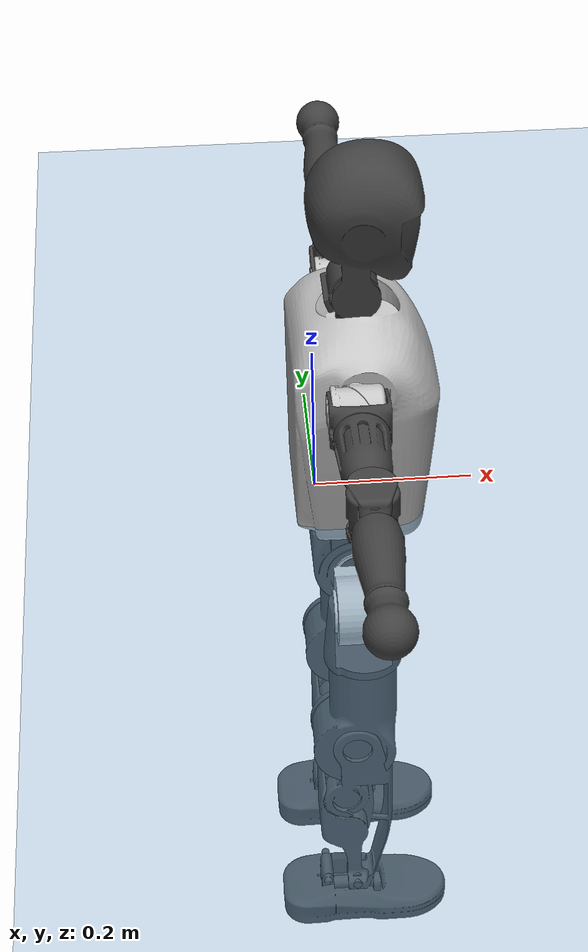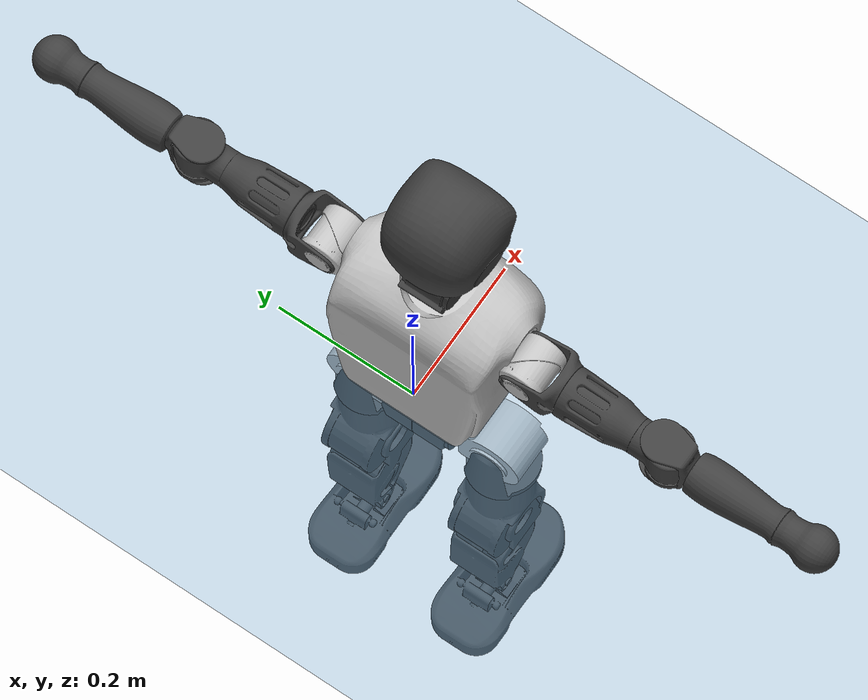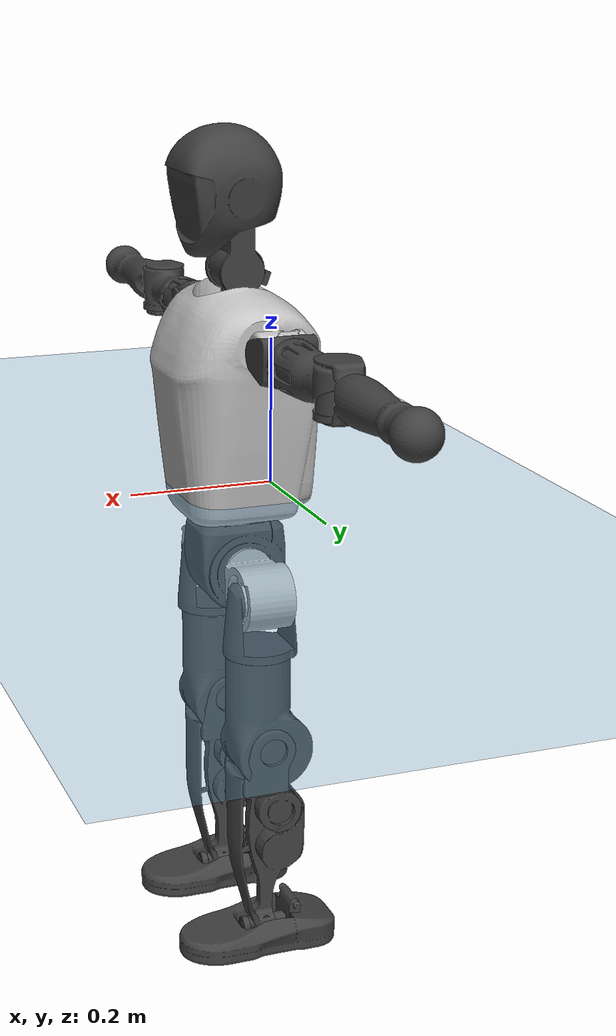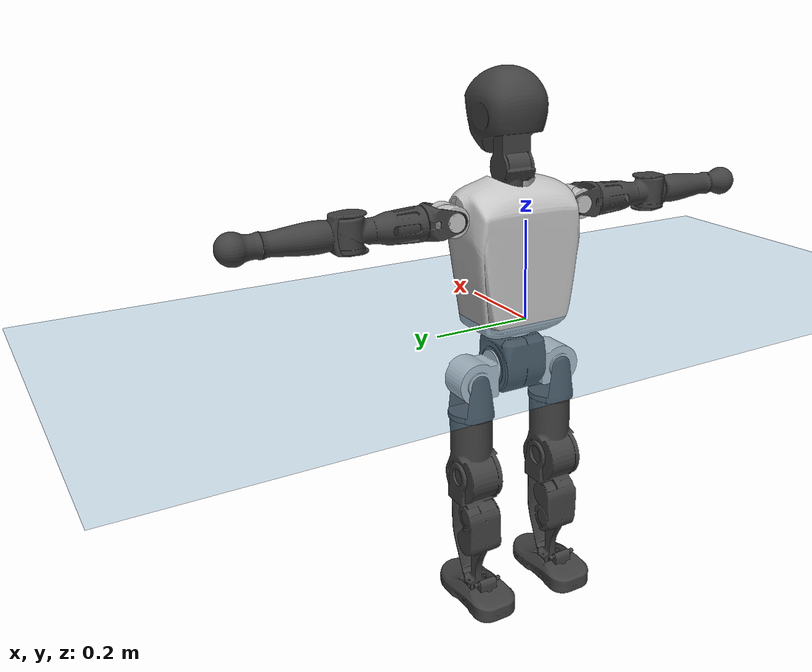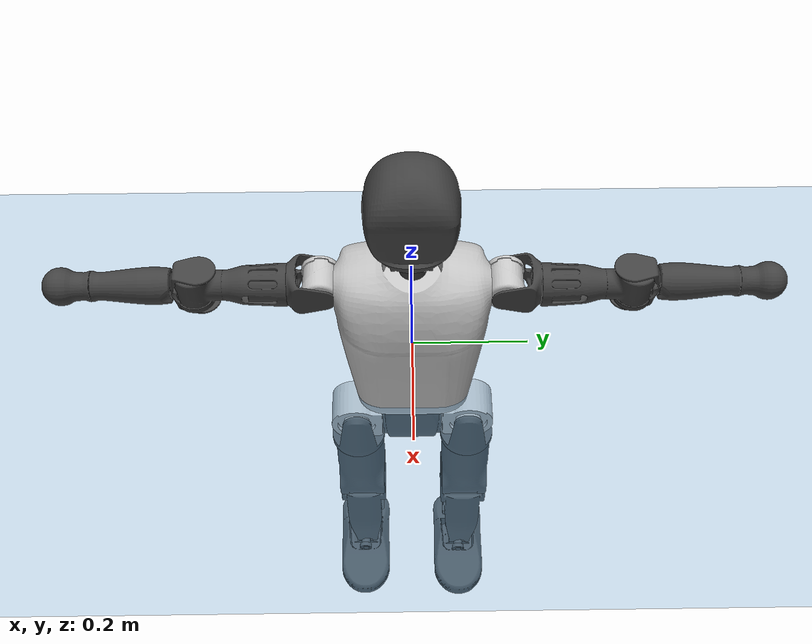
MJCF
<mujoco model="T1">
  <compiler angle="radian" assetdir="assets" balanceinertia="true" inertiafromgeom="false"/>

  <option timestep="0.005" density="1.2" viscosity="2e-05"/>

  <size nkey="1"/>

  <visual>
    <quality shadowsize="8192"/>
    <map shadowclip="0.5"/>
  </visual>

  <default>
    <default class="/">
      <joint armature="0.01" damping="0.01" frictionloss="0.1"/>
      <geom contype="0" conaffinity="0" group="1" solref="-1000 -80"/>
      <site size="0.01 0.005 0.005" group="5"/>
      <general forcelimited="true" biastype="affine" gainprm="25" biasprm="0 -25 -0.6"/>
      <default class="t1">
        <geom rgba="0.25 0.25 0.25 1"/>
        <default class="visual">
          <geom type="mesh" group="2"/>
        </default>
        <default class="collision">
          <geom group="3"/>
        </default>
        <default class="foot">
          <geom size="0.1115 0.05 0.015" type="box" condim="6" group="4" priority="1" solimp="0.015 1 0.015"/>
        </default>
        <default class="reward_collision_sphere">
          <geom group="5" rgba="1 0 0 1"/>
        </default>
      </default>
    </default>
  </default>

  <asset>
    <texture type="skybox" colorspace="auto" name="//unnamed_texture_0" builtin="gradient" rgb1="0.95 0.95 0.95" rgb2="0.95 0.95 0.95" width="100" height="600"/>
    <texture type="2d" colorspace="auto" name="texplane" builtin="checker" rgb1="0.345 0.575 0.748" rgb2="0.345 0.575 0.748" markrgb="1 1 1" width="512" height="512"/>
    <material name="MatPlane" class="/" texture="texplane" texuniform="true" texrepeat="2 2" specular="0.9"/>
    <mesh name="Trunk" class="/" file="Trunk.stl"/>
    <mesh name="H1" class="/" file="H1.stl"/>
    <mesh name="H2" class="/" file="H2.stl"/>
    <mesh name="AL1" class="/" file="AL1.stl"/>
    <mesh name="AL2" class="/" file="AL2.stl"/>
    <mesh name="AL3" class="/" file="AL3.stl"/>
    <mesh name="left_hand_link" class="/" file="left_hand_link.stl"/>
    <mesh name="AR1" class="/" file="AR1.stl"/>
    <mesh name="AR2" class="/" file="AR2.stl"/>
    <mesh name="AR3" class="/" file="AR3.stl"/>
    <mesh name="right_hand_link" class="/" file="right_hand_link.stl"/>
    <mesh name="Waist" class="/" file="Waist.stl"/>
    <mesh name="Hip_Pitch_Left" class="/" file="Hip_Pitch_Left.stl"/>
    <mesh name="Hip_Roll_Left" class="/" file="Hip_Roll_Left.stl"/>
    <mesh name="Hip_Yaw_Left" class="/" file="Hip_Yaw_Left.stl"/>
    <mesh name="Shank_Left" class="/" file="Shank_Left.stl"/>
    <mesh name="Ankle_Cross_Left" class="/" file="Ankle_Cross_Left.stl"/>
    <mesh name="left_foot_link" class="/" file="left_foot_link.stl"/>
    <mesh name="Hip_Pitch_Right" class="/" file="Hip_Pitch_Right.stl"/>
    <mesh name="Hip_Roll_Right" class="/" file="Hip_Roll_Right.stl"/>
    <mesh name="Hip_Yaw_Right" class="/" file="Hip_Yaw_Right.stl"/>
    <mesh name="Shank_Right" class="/" file="Shank_Right.stl"/>
    <mesh name="Ankle_Cross_Right" class="/" file="Ankle_Cross_Right.stl"/>
    <mesh name="right_foot_link" class="/" file="right_foot_link.stl"/>
  </asset>

  <worldbody>
    <geom name="floor" class="/" size="100 100 0.125" type="plane" group="0" material="MatPlane"/>
    <light name="toplight_shadow" class="/" pos="0 0 5" dir="0.0990148 0.0990148 -0.990148" type="directional" ambient="0.04 0.04 0.04" diffuse="0.55 0.55 0.55" specular="0.12 0.12 0.12"/>
    <light name="toplight_fill" class="/" pos="0 0 5" dir="0.0990148 0.0990148 -0.990148" type="directional" castshadow="false" ambient="0.04 0.04 0.04" diffuse="0.3 0.3 0.3" specular="0.08 0.08 0.08"/>
    <body name="trunk" childclass="t1" pos="0.000528729 0.000449159 0.00137882" quat="1 5.50765e-05 -7.84928e-05 -0.000312894">
      <inertial pos="0.0427301 -0.00247529 0.100905" quat="0.99995 0.000491901 -0.00997305 0.000871533" mass="8.50904" diaginertia="0.0307695 0.0552052 0.0457307"/>
      <joint name="//unnamed_joint_0" type="free" armature="0" damping="0" frictionloss="0"/>
      <geom name="//unnamed_geom_1" class="visual" rgba="0.76 0.76 0.76 1" mesh="Trunk"/>
      <geom name="//unnamed_geom_2" class="collision" size="0.0675243 0.0900324 0.135049" pos="0.0480857 0 0.115807" type="box"/>
      <geom name="//unnamed_geom_3" class="reward_collision_sphere" size="0.103537" pos="0.0480857 0 0.0965059"/>
      <geom name="//unnamed_geom_4" class="reward_collision_sphere" size="0.0135049" pos="0.0480857 0.0794311 0"/>
      <geom name="//unnamed_geom_5" class="reward_collision_sphere" size="0.0135049" pos="0.0480857 -0.0794311 0"/>
      <geom name="//unnamed_geom_6" class="reward_collision_sphere" size="0.0135049" pos="0.0480857 0.0999897 0.173711"/>
      <geom name="//unnamed_geom_7" class="reward_collision_sphere" size="0.0135049" pos="0.0480857 -0.0999897 0.173711"/>
      <site name="imu" pos="-0.0132561 0.0133674 -0.013157" size="0.00900324"/>
      <camera name="track" pos="0 -1.86897 0" quat="0.707107 0.707107 0 0" mode="trackcom"/>
      <camera name="ego_camera" pos="0.0977743 0 0.405325" quat="-0.5 -0.5 0.5 0.5"/>
      <body name="H1" pos="0.0495453 0.000758519 0.234932" quat="0.999999 0.000246855 0.000959641 0.000923735">
        <inertial pos="-0.000952242 -0.00113941 0.0545963" quat="0.76298 -0.0105309 0.00217416 0.646332" mass="0.344873" diaginertia="8.02402e-05 0.000162096 0.000129722"/>
        <joint name="AAHead_yaw" pos="0 0 0" axis="0.00225962 0.00325607 0.999992" range="-1.58645 1.5617" armature="0.010322" damping="0" frictionloss="0.0895296"/>
        <geom name="//unnamed_geom_8" class="visual" mesh="H1"/>
        <body name="H2" pos="0.00214303 -0.00126894 0.0593594" quat="1 2.72016e-05 -9.23321e-05 5.82777e-05">
          <inertial pos="0.00508517 0.000830252 0.0946998" quat="0.989027 0.104186 -0.0729 -0.0752153" mass="0.464689" diaginertia="0.000673947 0.00135629 0.00144765"/>
          <joint name="Head_pitch" pos="0 0 0" axis="0.00202383 -0.999963 0.00833351" stiffness="0.00206198" range="-1.20432 0.332738" armature="0.008738" damping="0.00152688" frictionloss="0.0913748"/>
          <geom name="//unnamed_geom_9" class="visual" mesh="H2"/>
          <geom name="//unnamed_geom_10" class="collision" size="0.0720259" pos="0.00801429 0 0.106156"/>
          <geom name="//unnamed_geom_11" class="reward_collision_sphere" size="0.0810291" pos="0.0160286 0 0.0965059"/>
        </body>
      </body>
      <body name="AL1" pos="0.0454579 0.0997018 0.210583" quat="0.999999 -0.000617275 0.0011938 0.000357112">
        <inertial pos="-0.000247132 0.0440229 -7.39442e-05" quat="0.502384 0.498073 -0.50285 0.496664" mass="0.389384" diaginertia="0.000458143 0.000930538 0.000247089"/>
        <joint name="Left_Shoulder_Pitch" pos="0 0 0" axis="3.89921e-05 1 -7.42749e-05" range="-3.31367 1.21854" armature="0.00943209" damping="0.0117885" frictionloss="0.084979"/>
        <geom name="//unnamed_geom_12" class="visual" rgba="0.76 0.76 0.76 1" mesh="AL1"/>
        <body name="AL2" pos="5.3953e-05 0.0444587 1.8654e-05" quat="1 -1.24346e-05 -1.63973e-05 0.000139207">
          <inertial pos="0.00272648 0.0364537 0.00216055" quat="0.48823 0.510914 -0.490144 0.510253" mass="0.122462" diaginertia="0.000135491 0.000242535 0.00015118"/>
          <joint name="Left_Shoulder_Roll" pos="0 0 0" axis="-0.999996 0.000401721 0.00262144" stiffness="0.00133862" range="-1.51902 1.7931" armature="0.00792313" damping="0" frictionloss="0.0904082"/>
          <geom name="//unnamed_geom_13" class="visual" mesh="AL2"/>
          <body name="AL3" pos="0.00260514 0.0570756 -0.00149622" quat="1 0.000315523 -0.000133467 9.85935e-05">
            <inertial pos="0.00106093 0.0798695 -0.00016949" quat="0.706037 0.708175 -0.0007512 -0.000106818" mass="0.756712" diaginertia="0.00421269 0.00935775 0.000507735"/>
            <joint name="Left_Elbow_Pitch" pos="0 0 0" axis="-0.00692756 -0.999912 0.0112709" range="-2.21992 2.31138" armature="0.00781312" damping="0.00470788" frictionloss="0.0826305"/>
            <geom name="//unnamed_geom_14" class="visual" mesh="AL3"/>
            <geom name="//unnamed_geom_15" class="collision" size="0.0270097 0.0675243" pos="0 0.0467242 0" quat="0.707105 0.707108 0 0" type="cylinder"/>
            <geom name="//unnamed_geom_16" class="reward_collision_sphere" size="0.0324117"/>
            <body name="left_hand_link" pos="-0.00108782 0.139659 0.00239099" quat="1 -8.13954e-06 1.61271e-05 6.08484e-05">
              <inertial pos="-0.000697474 0.101697 0.000750331" quat="0.708103 0.706109 3.82782e-05 -0.000450689" mass="0.237361" diaginertia="0.00275565 0.00591282 0.000178696"/>
              <joint name="Left_Elbow_Yaw" pos="0 0 0" axis="-0.00101588 -0.000409563 0.999999" range="-2.44302 0.00993813" armature="0.010299" damping="0.0148158" frictionloss="0.0864834"/>
              <geom name="//unnamed_geom_17" class="visual" mesh="left_hand_link"/>
              <geom name="//unnamed_geom_18" class="collision" size="0.0270097 0.0787783" pos="0 0.121483 0" quat="0.707105 0.707108 0 0" type="cylinder"/>
              <geom name="//unnamed_geom_19" class="reward_collision_sphere" size="0.0450162"/>
              <geom name="//unnamed_geom_20" class="reward_collision_sphere" size="0.0315113" pos="0 0.102793 0"/>
              <geom name="//unnamed_geom_21" class="reward_collision_sphere" size="0.0315113" pos="0 0.200914 0"/>
            </body>
          </body>
        </body>
      </body>
      <body name="AR1" pos="0.0434347 -0.0971679 0.211808" quat="1 -9.47058e-05 0.000418686 -8.72518e-05">
        <inertial pos="-0.00351352 -0.0429989 0.00152349" quat="0.510091 0.48651 -0.500634 0.502475" mass="0.391127" diaginertia="0.000453856 0.000924716 0.000254899"/>
        <joint name="Right_Shoulder_Pitch" pos="0 0 0" axis="-0.00174922 -0.999994 0.00290987" stiffness="0.0059425" range="-1.22388 3.30908" armature="0.00916489" damping="0.00840938" frictionloss="0.0827985"/>
        <geom name="//unnamed_geom_22" class="visual" rgba="0.76 0.76 0.76 1" mesh="AR1"/>
        <body name="AR2" pos="0.000450568 -0.0419398 -1.82742e-05" quat="1 -0.000564754 -0.000142062 0.000205517">
          <inertial pos="0.00210797 -0.0358901 0.00100391" quat="0.511664 0.488072 -0.511704 0.488001" mass="0.116395" diaginertia="0.000133228 0.00025404 0.000149227"/>
          <joint name="Right_Shoulder_Roll" pos="0 0 0" axis="-0.999946 0.000804676 -0.0103832" range="-1.72885 1.625" armature="0.00823242" damping="0.0132546" frictionloss="0.087055"/>
          <geom name="//unnamed_geom_23" class="visual" mesh="AR2"/>
          <body name="AR3" pos="-0.000141463 -0.0557346 -0.00192974" quat="1 -7.20232e-05 2.14713e-05 1.08956e-05">
            <inertial pos="-0.000170988 -0.0824847 0.00226125" quat="0.711975 0.702175 0.00433841 -0.00470042" mass="0.731366" diaginertia="0.00424678 0.00888139 0.00053056"/>
            <joint name="Right_Elbow_Pitch" pos="0 0 0" axis="-0.000561902 1 0.00021627" range="-2.25177 2.23379" armature="0.00915591" damping="0.0185736" frictionloss="0.089378"/>
            <geom name="//unnamed_geom_24" class="visual" mesh="AR3"/>
            <geom name="//unnamed_geom_25" class="collision" size="0.0270097 0.0675243" pos="0 -0.0467242 0" quat="0.707105 0.707108 0 0" type="cylinder"/>
            <geom name="//unnamed_geom_26" class="reward_collision_sphere" size="0.0324117"/>
            <body name="right_hand_link" pos="0.000235322 -0.136965 0.000197767" quat="1 -2.84276e-05 -2.121e-05 -5.94976e-05">
              <inertial pos="-0.000823359 -0.101377 -0.00101207" quat="0.706062 0.70815 0.00015416 8.78578e-05" mass="0.240783" diaginertia="0.00265903 0.00578443 0.000176183"/>
              <joint name="Right_Elbow_Yaw" pos="0 0 0" axis="0.00026239 4.98368e-05 1" range="-0.0114747 2.44359" armature="0.00877523" damping="0.00666793" frictionloss="0.0963566"/>
              <geom name="//unnamed_geom_27" class="visual" mesh="right_hand_link"/>
              <geom name="//unnamed_geom_28" class="collision" size="0.0270097 0.0787783" pos="0 -0.121483 0" quat="0.707105 0.707108 0 0" type="cylinder"/>
              <geom name="//unnamed_geom_29" class="reward_collision_sphere" size="0.0450162"/>
              <geom name="//unnamed_geom_30" class="reward_collision_sphere" size="0.0315113" pos="0 -0.102793 0"/>
              <geom name="//unnamed_geom_31" class="reward_collision_sphere" size="0.0315113" pos="0 -0.200914 0"/>
            </body>
          </body>
        </body>
      </body>
      <body name="Waist" pos="0.052255 -0.00169109 -0.111196" quat="1 -3.01801e-05 -0.000291797 0.000125878">
        <inertial pos="-0.00113127 0.000742761 0.00724677" quat="0.983648 0.000397225 -0.180081 0.00268828" mass="1.92627" diaginertia="0.00173254 0.0038651 0.00401994"/>
        <joint name="Waist" pos="0 0 0" axis="-0.0091123 -0.0076581 0.999929" stiffness="0.00195564" range="-1.58891 1.58674" armature="0.00895061" damping="0.0264012" frictionloss="0.0899565"/>
        <geom name="//unnamed_geom_32" class="visual" mesh="Waist"/>
        <body name="Hip_Pitch_Left" pos="-0.0017861 0.100419 0.00124394" quat="0.999999 0.000591107 -0.000942592 0.00105533">
          <inertial pos="-0.00113779 -0.00448421 -0.0182537" quat="0.974888 0.222085 0.0164705 5.68358e-06" mass="0.720886" diaginertia="0.000575321 0.00101852 0.00104774"/>
          <joint name="Left_Hip_Pitch" pos="0 0 0" axis="-0.00311383 0.999994 -0.00140068" range="-1.77707 1.58253" armature="0.00803548" damping="0.0102968" frictionloss="0.102097"/>
          <geom name="//unnamed_geom_33" class="visual" rgba="0.76 0.76 0.76 1" mesh="Hip_Pitch_Left"/>
          <body name="Hip_Roll_Left" pos="0.0032422 -0.000195157 -0.0222598" quat="1 -0.000946275 0.000112795 -0.000167261">
            <inertial pos="0.00231748 -1.88014e-05 -0.0544139" quat="0.707086 -0.00596127 -0.00604204 0.707077" mass="0.273178" diaginertia="0.000575014 0.00107115 0.000424327"/>
            <joint name="Left_Hip_Roll" pos="0 0 0" axis="-0.999993 0.00313524 -0.00185669" range="-1.56504 0.211646" armature="0.00963811" damping="0.0200647" frictionloss="0.0893024"/>
            <geom name="//unnamed_geom_34" class="visual" mesh="Hip_Roll_Left"/>
            <geom name="//unnamed_geom_35" class="reward_collision_sphere" size="0.0495178"/>
            <body name="Hip_Yaw_Left" pos="0.000208751 -3.35216e-05 -0.07874" quat="1 -0.000148321 -2.78464e-05 -0.000159666">
              <inertial pos="-0.00458495 0.00209206 -0.0835825" quat="0.69918 -0.0323046 -0.0349893 0.713358" mass="1.59199" diaginertia="0.00859787 0.0182198 0.0021714"/>
              <joint name="Left_Hip_Yaw" pos="0 0 0" axis="-0.00534118 0.00422005 -0.999977" range="-1.01439 0.997379" armature="0.00903407" damping="0.00865686" frictionloss="0.0959789"/>
              <geom name="//unnamed_geom_36" class="visual" mesh="Hip_Yaw_Left"/>
              <geom name="//unnamed_geom_37" class="collision" size="0.0450162 0.0720259" type="cylinder"/>
              <body name="Shank_Left" pos="-0.00884356 -0.00130062 -0.130648" quat="0.999999 0.000685089 0.000417047 -0.000606757">
                <inertial pos="-0.00509424 -0.000328186 -0.120476" quat="0.998156 -0.00222517 -0.0279063 0.0538569" mass="1.29374" diaginertia="0.011625 0.0251082 0.00157372"/>
                <joint name="Left_Knee_Pitch" pos="0 0 0" axis="-0.00577773 0.999982 0.00142147" range="-0.0073213 2.29295" armature="0.00990048" damping="0.00346866" frictionloss="0.0906257"/>
                <geom name="//unnamed_geom_38" class="visual" mesh="Shank_Left"/>
                <geom name="//unnamed_geom_39" class="collision" size="0.0450162 0.0675243" pos="0 0 -0.115807" type="cylinder"/>
                <geom name="//unnamed_geom_40" class="reward_collision_sphere" size="0.058521"/>
                <body name="Ankle_Cross_Left" pos="0.000301712 -0.00217794 -0.269697" quat="1 -3.44598e-05 5.02315e-05 -6.88809e-07">
                  <inertial pos="-0.0026639 0.000591332 -0.00864218" quat="0.436141 0.551339 0.55729 0.441853" mass="0.0519198" diaginertia="9.69962e-06 1.80551e-05 9.36804e-06"/>
                  <joint name="Left_Ankle_Pitch" pos="0 0 0" axis="-0.000366977 0.999999 0.0014156" stiffness="0.00527616" range="-0.922738 0.40268" armature="0.00944818" damping="0" frictionloss="0.0942748"/>
                  <geom name="//unnamed_geom_41" class="visual" mesh="Ankle_Cross_Left"/>
                  <body name="left_foot_link" pos="-0.001664 -0.000166325 -0.0143024" quat="0.999999 -7.50172e-05 -0.000292705 0.00134174">
                    <inertial pos="0.000967446 -0.00111217 -0.00859251" quat="0.00515148 0.627177 0.00327716 0.778853" mass="0.513915" diaginertia="0.000921646 0.00176595 0.00195223"/>
                    <joint name="Left_Ankle_Roll" pos="0 0 0" axis="-0.999968 0.00367601 0.00705962" stiffness="0.00681973" range="-0.43654 0.493891" armature="0.00920301" damping="0.0111364" frictionloss="0.101613"/>
                    <geom name="//unnamed_geom_42" class="visual" mesh="left_foot_link"/>
                    <geom name="left_foot" class="foot" size="0.104905 0.0414715 0.0148493" pos="0.00801429 0 -0.0144759"/>
                    <geom name="//unnamed_geom_44" class="reward_collision_sphere" size="0.0468168" pos="0.00801429 0 -0.0144759"/>
                    <geom name="//unnamed_geom_45" class="reward_collision_sphere" size="0.0270097" pos="0.0761357 -0.0214931 -0.0144759"/>
                    <geom name="//unnamed_geom_46" class="reward_collision_sphere" size="0.0270097" pos="-0.0561 -0.0214931 -0.0144759"/>
                    <site name="left_foot" class="foot" pos="0.00801429 0 -0.0144759" size="0.00900324"/>
                  </body>
                </body>
              </body>
            </body>
          </body>
        </body>
        <body name="Hip_Pitch_Right" pos="-0.000177282 -0.0987726 0.000237536" quat="1 3.436e-05 -0.00010114 -1.09977e-05">
          <inertial pos="0.00100027 0.00713042 -0.0173445" quat="0.973044 -0.23035 0.00319061 -0.0107062" mass="0.724104" diaginertia="0.000577806 0.00101291 0.00102035"/>
          <joint name="Right_Hip_Pitch" pos="0 0 0" axis="0.000633327 -1 0.000196848" stiffness="0.000907841" range="-1.56155 1.78367" armature="0.0088348" damping="0.00861407" frictionloss="0.0892624"/>
          <geom name="//unnamed_geom_47" class="visual" rgba="0.76 0.76 0.76 1" mesh="Hip_Pitch_Right"/>
          <body name="Hip_Roll_Right" pos="0.00156728 0.000624546 -0.0217256" quat="1 2.44037e-05 0.00020809 8.73195e-05">
            <inertial pos="0.00115666 0.00052368 -0.0519172" quat="0.709738 -0.00237384 0.00172174 0.70446" mass="0.270019" diaginertia="0.000572571 0.0010737 0.000412139"/>
            <joint name="Right_Hip_Roll" pos="0 0 0" axis="-1 1.00574e-05 7.55524e-06" stiffness="0.00203491" range="-0.18268 1.58079" armature="0.00864034" damping="0.00841207" frictionloss="0.0886619"/>
            <geom name="//unnamed_geom_48" class="visual" mesh="Hip_Roll_Right"/>
            <geom name="//unnamed_geom_49" class="reward_collision_sphere" size="0.0495178"/>
            <body name="Hip_Yaw_Right" pos="-0.00208518 0.00209958 -0.0793378" quat="1 0.000171008 5.7834e-05 -0.00032933">
              <inertial pos="-0.00739046 -0.000941646 -0.0888441" quat="0.721389 -0.0275574 -0.0311129 0.691281" mass="1.61042" diaginertia="0.00847297 0.0177855 0.00213876"/>
              <joint name="Right_Hip_Yaw" pos="0 0 0" axis="0.00110957 0.00170416 -0.999998" range="-0.955881 0.985013" armature="0.00904818" damping="0.00945309" frictionloss="0.0891707"/>
              <geom name="//unnamed_geom_50" class="visual" mesh="Hip_Yaw_Right"/>
              <geom name="//unnamed_geom_51" class="collision" size="0.0450162 0.0720259" type="cylinder"/>
              <body name="Shank_Right" pos="-0.0109827 0.00123927 -0.127696" quat="1 7.66741e-06 -4.76636e-06 -1.03186e-05">
                <inertial pos="-0.00215148 -0.00136432 -0.118287" quat="0.998864 -0.0057608 -0.0330755 -0.0338084" mass="1.24384" diaginertia="0.0113078 0.0249385 0.0015948"/>
                <joint name="Right_Knee_Pitch" pos="0 0 0" axis="0.000229715 -1 0.000347053" range="-2.35069 -0.0158919" armature="0.00949073" damping="0" frictionloss="0.0992124"/>
                <geom name="//unnamed_geom_52" class="visual" mesh="Shank_Right"/>
                <geom name="//unnamed_geom_53" class="collision" size="0.0450162 0.0675243" pos="0 0 -0.115807" type="cylinder"/>
                <geom name="//unnamed_geom_54" class="reward_collision_sphere" size="0.058521"/>
                <body name="Ankle_Cross_Right" pos="0.000416275 -0.00343957 -0.269956" quat="0.999999 -0.0010315 -0.000569972 0.000701502">
                  <inertial pos="-0.00187889 1.87599e-05 -0.00715732" quat="0.443853 0.550703 0.5521 0.441482" mass="0.053608" diaginertia="9.27977e-06 1.83434e-05 9.57319e-06"/>
                  <joint name="Right_Ankle_Pitch" pos="0 0 0" axis="-0.0046279 -0.999984 0.00331951" range="-0.355329 0.922845" armature="0.00884774" damping="0.0176599" frictionloss="0.0904853"/>
                  <geom name="//unnamed_geom_55" class="visual" mesh="Ankle_Cross_Right"/>
                  <body name="right_foot_link" pos="0.000189002 -0.000945144 -0.0124448" quat="0.999999 0.000638999 -0.000577905 0.000618818">
                    <inertial pos="-0.00203504 0.000452919 -0.00898767" quat="-0.00209926 0.619471 -0.00370755 0.785008" mass="0.499703" diaginertia="0.000860792 0.00166582 0.00184366"/>
                    <joint name="Right_Ankle_Roll" pos="0 0 0" axis="-0.999995 -0.0022631 -0.00204877" range="-0.42333 0.433884" armature="0.00863702" damping="0.00451812" frictionloss="0.0852748"/>
                    <geom name="//unnamed_geom_56" class="visual" mesh="right_foot_link"/>
                    <geom name="right_foot" class="foot" size="0.102592 0.0432033 0.0138418" pos="0.00801429 0 -0.0144759"/>
                    <geom name="//unnamed_geom_58" class="reward_collision_sphere" size="0.036013"/>
                    <geom name="//unnamed_geom_59" class="reward_collision_sphere" size="0.0270097" pos="0.00801429 0 -0.0144759"/>
                    <geom name="//unnamed_geom_60" class="reward_collision_sphere" size="0.0270097" pos="0.0761357 0.0214931 -0.0144759"/>
                    <geom name="//unnamed_geom_61" class="reward_collision_sphere" size="0.0270097" pos="-0.0561 0.0214931 -0.0144759"/>
                    <site name="right_foot" class="foot" pos="0.00801429 0 -0.0144759" size="0.00900324"/>
                  </body>
                </body>
              </body>
            </body>
          </body>
        </body>
      </body>
    </body>
  </worldbody>

  <contact>
    <pair class="/" geom1="floor" geom2="left_foot" name="//unnamed_contact_0"/>
    <pair class="/" geom1="floor" geom2="right_foot" name="//unnamed_contact_1"/>
  </contact>

  <actuator>
    <general name="AAHead_yaw" class="/" joint="AAHead_yaw" forcerange="-6.52437 6.52437" gainprm="20.9511" biasprm="0 -20.9511 -0.525893"/>
    <general name="Head_pitch" class="/" joint="Head_pitch" forcerange="-6.04603 6.04603" gainprm="20.9511" biasprm="0 -20.9511 -0.525893"/>
    <general name="Left_Shoulder_Pitch" class="/" joint="Left_Shoulder_Pitch" forcerange="-16.0057 16.0057" gainprm="20.9511" biasprm="0 -20.9511 -0.525893"/>
    <general name="Left_Shoulder_Roll" class="/" joint="Left_Shoulder_Roll" forcerange="-15.7836 15.7836" gainprm="20.9511" biasprm="0 -20.9511 -0.525893"/>
    <general name="Left_Elbow_Pitch" class="/" joint="Left_Elbow_Pitch" forcerange="-14.6216 14.6216" gainprm="20.9511" biasprm="0 -20.9511 -0.525893"/>
    <general name="Left_Elbow_Yaw" class="/" joint="Left_Elbow_Yaw" forcerange="-17.8246 17.8246" gainprm="20.9511" biasprm="0 -20.9511 -0.525893"/>
    <general name="Right_Shoulder_Pitch" class="/" joint="Right_Shoulder_Pitch" forcerange="-17.8738 17.8738" gainprm="20.9511" biasprm="0 -20.9511 -0.525893"/>
    <general name="Right_Shoulder_Roll" class="/" joint="Right_Shoulder_Roll" forcerange="-16.4407 16.4407" gainprm="20.9511" biasprm="0 -20.9511 -0.525893"/>
    <general name="Right_Elbow_Pitch" class="/" joint="Right_Elbow_Pitch" forcerange="-16.3012 16.3012" gainprm="20.9511" biasprm="0 -20.9511 -0.525893"/>
    <general name="Right_Elbow_Yaw" class="/" joint="Right_Elbow_Yaw" forcerange="-15.9094 15.9094" gainprm="20.9511" biasprm="0 -20.9511 -0.525893"/>
    <general name="Waist" class="/" joint="Waist" forcerange="-26.5537 26.5537" gainprm="20.9511" biasprm="0 -20.9511 -0.525893"/>
    <general name="Left_Hip_Pitch" class="/" joint="Left_Hip_Pitch" forcerange="-41.111 41.111" gainprm="20.9511" biasprm="0 -20.9511 -0.525893"/>
    <general name="Left_Hip_Roll" class="/" joint="Left_Hip_Roll" forcerange="-29.6365 29.6365" gainprm="20.9511" biasprm="0 -20.9511 -0.525893"/>
    <general name="Left_Hip_Yaw" class="/" joint="Left_Hip_Yaw" forcerange="-24.3271 24.3271" gainprm="20.9511" biasprm="0 -20.9511 -0.525893"/>
    <general name="Left_Knee_Pitch" class="/" joint="Left_Knee_Pitch" forcerange="-48.357 48.357" gainprm="20.9511" biasprm="0 -20.9511 -0.525893"/>
    <general name="Left_Ankle_Pitch" class="/" joint="Left_Ankle_Pitch" forcerange="-17.9539 17.9539" gainprm="20.9511" biasprm="0 -20.9511 -0.525893"/>
    <general name="Left_Ankle_Roll" class="/" joint="Left_Ankle_Roll" forcerange="-13.4493 13.4493" gainprm="20.9511" biasprm="0 -20.9511 -0.525893"/>
    <general name="Right_Hip_Pitch" class="/" joint="Right_Hip_Pitch" forcerange="-39.1919 39.1919" gainprm="20.9511" biasprm="0 -20.9511 -0.525893"/>
    <general name="Right_Hip_Roll" class="/" joint="Right_Hip_Roll" forcerange="-27.1222 27.1222" gainprm="20.9511" biasprm="0 -20.9511 -0.525893"/>
    <general name="Right_Hip_Yaw" class="/" joint="Right_Hip_Yaw" forcerange="-27.5085 27.5085" gainprm="20.9511" biasprm="0 -20.9511 -0.525893"/>
    <general name="Right_Knee_Pitch" class="/" joint="Right_Knee_Pitch" forcerange="-53.6979 53.6979" gainprm="20.9511" biasprm="0 -20.9511 -0.525893"/>
    <general name="Right_Ankle_Pitch" class="/" joint="Right_Ankle_Pitch" forcerange="-16.4061 16.4061" gainprm="20.9511" biasprm="0 -20.9511 -0.525893"/>
    <general name="Right_Ankle_Roll" class="/" joint="Right_Ankle_Roll" forcerange="-13.5417 13.5417" gainprm="20.9511" biasprm="0 -20.9511 -0.525893"/>
  </actuator>

  <sensor>
    <gyro site="imu" name="imu_angular_velocity"/>
    <velocimeter site="imu" name="imu_linear_velocity"/>
    <framelinvel objtype="site" objname="left_foot" name="left_foot_global_linear_velocity"/>
    <framelinvel objtype="site" objname="right_foot" name="right_foot_global_linear_velocity"/>
  </sensor>

  <keyframe>
    <key name="home" qpos="0 0 0.6385 1 0 0 0 0 0 0 1.4 0 -0.4 0 -1.4 0 0.4 0 -0.4 0 0 0.8 -0.4 0 0.4 0 0 -0.8 0.4 0"/>
  </keyframe>
</mujoco>
